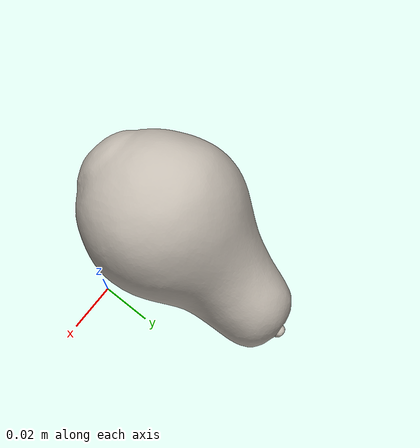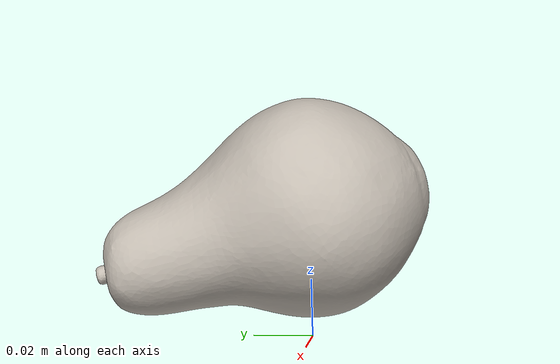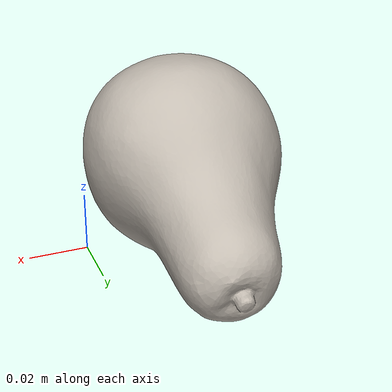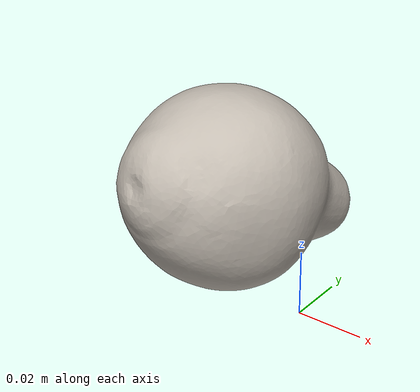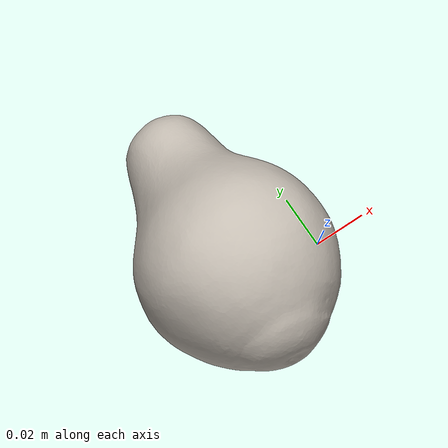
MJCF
<mujoco model="pear">
  <compiler angle="radian" meshdir="assets" texturedir="assets"/>
    <default>
        <default class="ycb_col">
            <geom contype="1" conaffinity="1" group="3" rgba=".4 .5 .6 1"/>
        </default>
        <default class="ycb_viz">
            <geom contype="0" conaffinity="0" type="mesh" mass="0"/>
        </default>
    </default>
  <asset>
    <texture type="2d" name="pear_tex" file="texture_map.png"/>
    <material name="pear_mat" texture="pear_tex" specular="0.5" shininess="0.5"/>
    <mesh file="textured.obj" name="pear"/>
    <mesh file="textured_collision_0.obj" name="pear_collision_0"/>
    <mesh file="textured_collision_1.obj" name="pear_collision_1"/>
  </asset>
  <worldbody>
      <geom class="ycb_viz" material="pear_mat" mesh="pear"/>
      <geom class="ycb_col" mesh="pear_collision_0" conaffinity="1" condim="4" friction="0.1 0.1 0.1" mass="0.04161813942081358" rgba="1 1 1 1" solimp="0.99 0.99 0.01" solref=".001 0.1" type="mesh" group="3"/>
      <geom class="ycb_col" mesh="pear_collision_1" conaffinity="1" condim="4" friction="0.1 0.1 0.1" mass="0.007381860579186416" rgba="1 1 1 1" solimp="0.99 0.99 0.01" solref=".001 0.1" type="mesh" group="3"/>
  </worldbody>
</mujoco>
